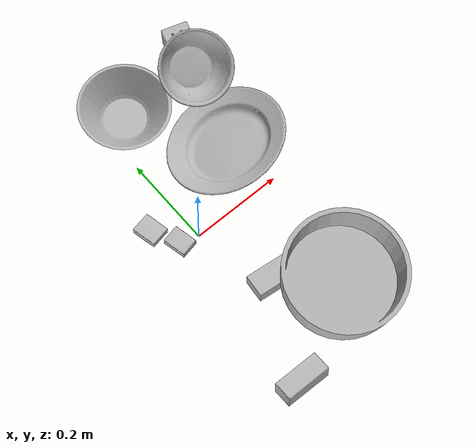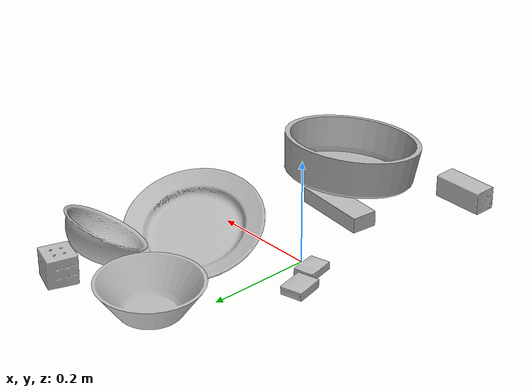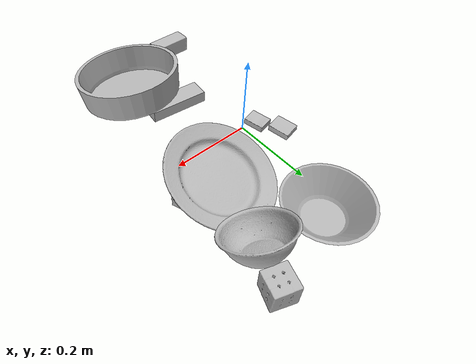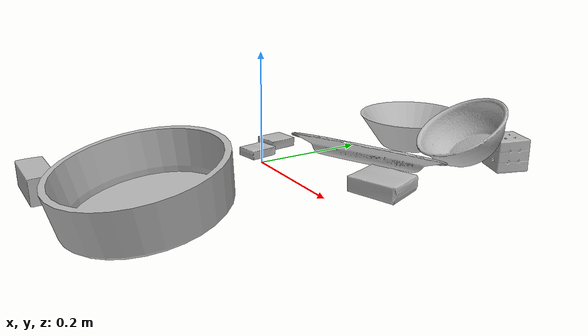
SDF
<sdf version="1.4">
  <world name="default">
    <light name="light1" type="point">
      <pose>0 0 1 0 0 0</pose>
      <diffuse>3 3 3 1</diffuse>
      <specular>3 3 3 1</specular>
    </light>
    <light name="light2" type="point">
      <pose>0 0.5 2 0 0 0</pose>
      <diffuse>1 1 1 1</diffuse>
      <specular>1 1 1 1</specular>
    </light>
    <light name="light3" type="point">
      <pose>0 0.5 2 0 0 0</pose>
      <diffuse>3 3 3 1</diffuse>
      <specular>3 3 3 1</specular>
    </light>
    <scene>
      <ambient>0.7 0.7 0.7</ambient>
    </scene>
    <model name="box1">
      <link name="link_box1">
        <collision name="default">
          <geometry>
            <mesh>
              <uri>model://rubiks_cube/collision_meshes/collision.obj</uri>
              <scale>1.0 1.0 1.0</scale>
            </mesh>
          </geometry>
          <surface>
            <friction>
              <ode>
                <mu>0.5</mu>
                <mu2>0.5</mu2>
              </ode>
            </friction>
          <contact>
        <ode>
            <max_vel>0</max_vel>
            <min_depth>0.0001</min_depth>
            <kp>1e8</kp>
        </ode>
    </contact></surface>
        </collision>
        <visual name="default">
          <geometry>
            <mesh>
              <uri>model://rubiks_cube/visual_meshes/visual.dae</uri>
              <scale>1.0 1.0 1.0</scale>
            </mesh>
          </geometry>
        </visual>
        <inertial>
          <mass>0.14937607944011688</mass>
          <pose>2.6721041649580002e-05 5.256967051536776e-05 -7.264316082000732e-06 -0.054671979216720346 -0.0981390543553378 -0.03445400726577695</pose>
          <inertia>
            <ixx>8.254031e-05</ixx>
            <iyy>8.2155384e-05</iyy>
            <izz>8.32243e-05</izz>
            <ixy>0</ixy>
            <ixz>0</ixz>
            <iyz>0</iyz>
          </inertia>
        </inertial>
      </link>
      <pose>0.24117065966129303 0.35360878705978394 0.028678910806775093 3.98319736513743e-07 -2.515632883096973e-05 -1.8897349023410228</pose>
    </model>
    <model name="box11">
      <link name="link_box11">
        <collision name="default">
          <geometry>
            <mesh>
              <uri>model://gelatin_box/collision_meshes/collision.obj</uri>
              <scale>1.0 1.0 1.0</scale>
            </mesh>
          </geometry>
          <surface>
            <friction>
              <ode>
                <mu>0.5</mu>
                <mu2>0.5</mu2>
              </ode>
            </friction>
          <contact>
        <ode>
            <max_vel>0</max_vel>
            <min_depth>0.0001</min_depth>
            <kp>1e8</kp>
        </ode>
    </contact></surface>
        </collision>
        <visual name="default">
          <geometry>
            <mesh>
              <uri>model://gelatin_box/visual_meshes/visual.dae</uri>
              <scale>1.0 1.0 1.0</scale>
            </mesh>
          </geometry>
        </visual>
        <inertial>
          <mass>0.1927502304315567</mass>
          <pose>0.0004319618456065655 0.00011156871914863586 -0.00036403213744051754 -0.0010503718519204429 -0.00475581822657324 0.016440557608202722</pose>
          <inertia>
            <ixx>0.00013606594</ixx>
            <iyy>9.7191194e-05</iyy>
            <izz>0.00020712269</izz>
            <ixy>0</ixy>
            <ixz>0</ixz>
            <iyz>0</iyz>
          </inertia>
        </inertial>
      </link>
      <pose>0.2227546125650406 0.09527044743299484 0.01517206709831953 0.005298664784465809 -0.0069364712714654496 1.9144145422195085</pose>
    </model>
    <model name="box2">
      <link name="link_box2">
        <collision name="default">
          <geometry>
            <mesh>
              <uri>model://jenga/collision_meshes/collision.obj</uri>
              <scale>1.0 1.0 1.0</scale>
            </mesh>
          </geometry>
          <surface>
            <friction>
              <ode>
                <mu>0.5</mu>
                <mu2>0.5</mu2>
              </ode>
            </friction>
          <contact>
        <ode>
            <max_vel>0</max_vel>
            <min_depth>0.0001</min_depth>
            <kp>1e8</kp>
        </ode>
    </contact></surface>
        </collision>
        <visual name="default">
          <geometry>
            <mesh>
              <uri>model://jenga/visual_meshes/visual.dae</uri>
              <scale>1.0 1.0 1.0</scale>
            </mesh>
          </geometry>
        </visual>
        <inertial>
          <mass>0.17753760516643524</mass>
          <pose>-2.5028555228345795e-07 -0.00010250010382151231 -4.0923401684267446e-05 0.0 -7.342155186052628e-07 0.0</pose>
          <inertia>
            <ixx>4.912897e-05</ixx>
            <iyy>0.00033289654</iyy>
            <izz>0.00035539534</izz>
            <ixy>0</ixy>
            <ixz>0</ixz>
            <iyz>0</iyz>
          </inertia>
        </inertial>
      </link>
      <pose>0.08045366406440735 -0.17252005636692047 0.01501935813575983 -0.0007431331541714011 -3.394589166578234e-05 3.0386310471715055</pose>
    </model>
    <model name="box21">
      <link name="link_box21">
        <collision name="default">
          <geometry>
            <mesh>
              <uri>model://cracker_box/collision_meshes/collision.obj</uri>
              <scale>0.25 0.25 0.25</scale>
            </mesh>
          </geometry>
          <surface>
            <friction>
              <ode>
                <mu>0.5</mu>
                <mu2>0.5</mu2>
              </ode>
            </friction>
          <contact>
        <ode>
            <max_vel>0</max_vel>
            <min_depth>0.0001</min_depth>
            <kp>1e8</kp>
        </ode>
    </contact></surface>
        </collision>
        <visual name="default">
          <geometry>
            <mesh>
              <uri>model://cracker_box/visual_meshes/visual.dae</uri>
              <scale>0.25 0.25 0.25</scale>
            </mesh>
          </geometry>
        </visual>
        <inertial>
          <mass>0.032025858759880066</mass>
          <pose>0.00023660347505938262 6.358561950037256e-05 -0.0004257383698131889 -0.0003162079452709603 -0.01110648960005095 0.0025467945380896087</pose>
          <inertia>
            <ixx>5.091218e-06</ixx>
            <iyy>8.406602e-06</iyy>
            <izz>1.1996991e-05</izz>
            <ixy>0</ixy>
            <ixz>0</ixz>
            <iyz>0</iyz>
          </inertia>
        </inertial>
      </link>
      <pose>-0.03967461735010147 0.01233014278113842 0.00909603014588356 -0.014050628451266449 -0.005016582201095092 -1.3686909703510424</pose>
    </model>
    <model name="box3">
      <link name="link_box3">
        <collision name="default">
          <geometry>
            <mesh>
              <uri>model://wood_block/collision_meshes/collision.obj</uri>
              <scale>0.5 0.5 0.5</scale>
            </mesh>
          </geometry>
          <surface>
            <friction>
              <ode>
                <mu>0.5</mu>
                <mu2>0.5</mu2>
              </ode>
            </friction>
          <contact>
        <ode>
            <max_vel>0</max_vel>
            <min_depth>0.0001</min_depth>
            <kp>1e8</kp>
        </ode>
    </contact></surface>
        </collision>
        <visual name="default">
          <geometry>
            <mesh>
              <uri>model://wood_block/visual_meshes/visual.dae</uri>
              <scale>0.5 0.5 0.5</scale>
            </mesh>
          </geometry>
        </visual>
        <inertial>
          <mass>0.12936852872371674</mass>
          <pose>-2.9066577553749084e-06 -0.00028540470520965755 0.00013204290007706732 -0.052209755292171825 -0.0051926950820086835 -0.006861377939779924</pose>
          <inertia>
            <ixx>4.327867e-05</ixx>
            <iyy>0.00013671734</iyy>
            <izz>0.00013620593</izz>
            <ixy>0</ixy>
            <ixz>0</ixz>
            <iyz>0</iyz>
          </inertia>
        </inertial>
      </link>
      <pose>-0.048213668167591095 -0.3779471516609192 0.02262927033007145 -0.005208433129469176 0.005718612296163557 -3.136302582747072</pose>
    </model>
    <model name="box31">
      <link name="link_box31">
        <collision name="default">
          <geometry>
            <mesh>
              <uri>model://pudding_box/collision_meshes/collision.obj</uri>
              <scale>0.5 0.5 0.5</scale>
            </mesh>
          </geometry>
          <surface>
            <friction>
              <ode>
                <mu>0.5</mu>
                <mu2>0.5</mu2>
              </ode>
            </friction>
          <contact>
        <ode>
            <max_vel>0</max_vel>
            <min_depth>0.0001</min_depth>
            <kp>1e8</kp>
        </ode>
    </contact></surface>
        </collision>
        <visual name="default">
          <geometry>
            <mesh>
              <uri>model://pudding_box/visual_meshes/visual.dae</uri>
              <scale>0.5 0.5 0.5</scale>
            </mesh>
          </geometry>
        </visual>
        <inertial>
          <mass>0.02777985855937004</mass>
          <pose>0.00024474109522998333 0.00040339428232982755 -0.0002594413817860186 0.005213100847255284 -0.006603800106148706 0.020079825159203687</pose>
          <inertia>
            <ixx>7.850925e-06</ixx>
            <iyy>5.282159e-06</iyy>
            <izz>1.1593943e-05</izz>
            <ixy>0</ixy>
            <ixz>0</ixz>
            <iyz>0</iyz>
          </inertia>
        </inertial>
      </link>
      <pose>-0.07044530659914017 0.07006675004959106 0.009862901642918587 0.02234856013998781 -0.011391649060993554 -2.9483414619279427</pose>
    </model>
    <model name="plate1">
      <link name="link_plate1">
        <collision name="default">
          <geometry>
            <mesh>
              <uri>model://plate/collision_meshes/collision.obj</uri>
              <scale>1.0 1.0 1.0</scale>
            </mesh>
          </geometry>
          <surface>
            <friction>
              <ode>
                <mu>0.5</mu>
                <mu2>0.5</mu2>
              </ode>
            </friction>
          <contact>
        <ode>
            <max_vel>0</max_vel>
            <min_depth>0.0001</min_depth>
            <kp>1e8</kp>
        </ode>
    </contact></surface>
        </collision>
        <visual name="default">
          <geometry>
            <mesh>
              <uri>model://plate/visual_meshes/visual.dae</uri>
              <scale>1.0 1.0 1.0</scale>
            </mesh>
          </geometry>
        </visual>
        <inertial>
          <mass>0.18243028223514557</mass>
          <pose>-0.0006044635083526373 0.00027825916185975075 -0.0010561967501416802 0.002218802985991306 -0.003225472580220492 0.4526054178664253</pose>
          <inertia>
            <ixx>0.00085341244</ixx>
            <iyy>0.00084524986</iyy>
            <izz>0.0016691468</izz>
            <ixy>0</ixy>
            <ixz>0</ixz>
            <iyz>0</iyz>
          </inertia>
        </inertial>
      </link>
      <pose>0.16635477542877197 0.10775554925203323 0.04268159344792366 0.3268201743195523 -0.19550908507752934 -2.1493913905248223</pose>
    </model>
    <model name="bowl1">
      <link name="link_bowl1">
        <collision name="default">
          <geometry>
            <mesh>
              <uri>model://bowl_a/collision_meshes/collision.obj</uri>
              <scale>1.0 1.0 1.0</scale>
            </mesh>
          </geometry>
          <surface>
            <friction>
              <ode>
                <mu>0.5</mu>
                <mu2>0.5</mu2>
              </ode>
            </friction>
          <contact>
        <ode>
            <max_vel>0</max_vel>
            <min_depth>0.0001</min_depth>
            <kp>1e8</kp>
        </ode>
    </contact></surface>
        </collision>
        <visual name="default">
          <geometry>
            <mesh>
              <uri>model://bowl_a/visual_meshes/visual.dae</uri>
              <scale>1.0 1.0 1.0</scale>
            </mesh>
          </geometry>
        </visual>
        <inertial>
          <mass>0.33530884981155396</mass>
          <pose>0.00027867525932379067 4.7312179958680645e-05 -0.0013765293406322598 -0.0009805353119733814 -0.0010938238033148682 -0.19123781325276382</pose>
          <inertia>
            <ixx>0.0009546399</ixx>
            <iyy>0.0009605007</iyy>
            <izz>0.0016978635</izz>
            <ixy>0</ixy>
            <ixz>0</ixz>
            <iyz>0</iyz>
          </inertia>
        </inertial>
      </link>
      <pose>0.051758527755737305 0.3009270131587982 0.03038305975496769 -3.94224342831814e-07 -1.3236160218364032e-06 0.024174564483811774</pose>
    </model>
    <model name="plate2">
      <link name="link_plate2">
        <collision name="default">
          <geometry>
            <mesh>
              <uri>model://pan_tefal/collision_meshes/collision.obj</uri>
              <scale>1.0 1.0 1.0</scale>
            </mesh>
          </geometry>
          <surface>
            <friction>
              <ode>
                <mu>0.5</mu>
                <mu2>0.5</mu2>
              </ode>
            </friction>
          <contact>
        <ode>
            <max_vel>0</max_vel>
            <min_depth>0.0001</min_depth>
            <kp>1e8</kp>
        </ode>
    </contact></surface>
        </collision>
        <visual name="default">
          <geometry>
            <mesh>
              <uri>model://pan_tefal/visual_meshes/visual.dae</uri>
              <scale>1.0 1.0 1.0</scale>
            </mesh>
          </geometry>
        </visual>
        <inertial>
          <mass>1.3054066896438599</mass>
          <pose>-0.00018001779972109944 3.2791245757834986e-05 -0.008514936082065105 0.0008190347553724757 -0.0003301394488099971 -0.33186691456643896</pose>
          <inertia>
            <ixx>0.00901116</ixx>
            <iyy>0.009069256</iyy>
            <izz>0.016587809</izz>
            <ixy>0</ixy>
            <ixz>0</ixz>
            <iyz>0</iyz>
          </inertia>
        </inertial>
      </link>
      <pose>0.15141427516937256 -0.2724173069000244 0.0567033588886261 -0.10992135699878705 -0.13122792084863122 2.356651445692196</pose>
    </model>
    <model name="bowl2">
      <link name="link_bowl2">
        <collision name="default">
          <geometry>
            <mesh>
              <uri>model://bowl/collision_meshes/collision.obj</uri>
              <scale>1.0 1.0 1.0</scale>
            </mesh>
          </geometry>
          <surface>
            <friction>
              <ode>
                <mu>0.5</mu>
                <mu2>0.5</mu2>
              </ode>
            </friction>
          <contact>
        <ode>
            <max_vel>0</max_vel>
            <min_depth>0.0001</min_depth>
            <kp>1e8</kp>
        </ode>
    </contact></surface>
        </collision>
        <visual name="default">
          <geometry>
            <mesh>
              <uri>model://bowl/visual_meshes/visual.dae</uri>
              <scale>1.0 1.0 1.0</scale>
            </mesh>
          </geometry>
        </visual>
        <inertial>
          <mass>0.1096961572766304</mass>
          <pose>0.00020445209520403296 -0.0010302049340680242 -0.0008042648551054299 -0.015764066902751193 0.014546817497496476 0.7140421604823016</pose>
          <inertia>
            <ixx>0.00025198064</ixx>
            <iyy>0.00024635042</iyy>
            <izz>0.0004239182</izz>
            <ixy>0</ixy>
            <ixz>0</ixz>
            <iyz>0</iyz>
          </inertia>
        </inertial>
      </link>
      <pose>0.21864821016788483 0.2781968414783478 0.0597979910671711 0.07799622017842482 -0.5190140258269349 1.1842440547644528</pose>
    </model>
  <physics type="ode">
      <max_contacts>50</max_contacts>
      <ode>
        <solver>
          <type>quick</type>
          <iters>75</iters>
        </solver>
        <constraints>
          <contact_max_correcting_vel>0</contact_max_correcting_vel>
          <contact_surface_layer>0</contact_surface_layer>
        </constraints>
      </ode>
    </physics></world>
</sdf>
